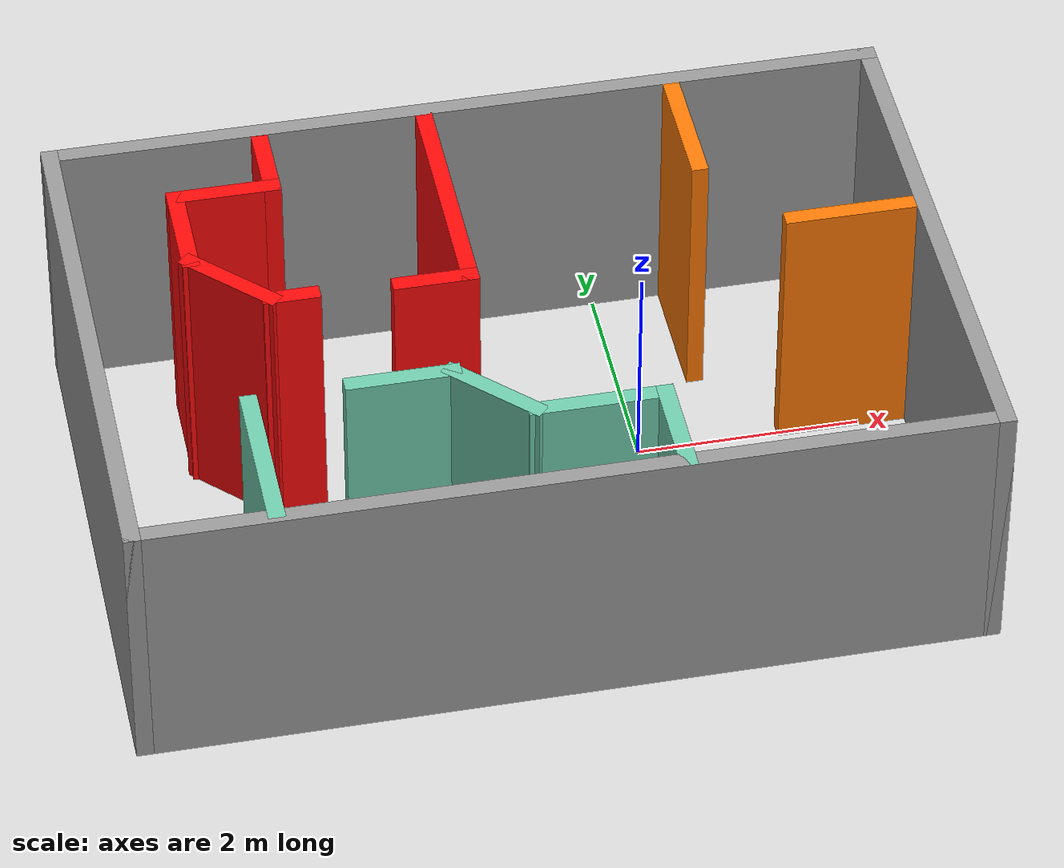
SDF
<?xml version='1.0'?>
<sdf version='1.6'>
  <model name='floorplan_small'>
    <pose frame=''>-1.1795 -0.3396 0 0 -0 0</pose>
    <link name='Wall_10'>
      <collision name='Wall_10_Collision'>
        <geometry>
          <box>
            <size>5 0.15 2.5</size>
          </box>
        </geometry>
        <pose frame=''>0 0 1.25 0 -0 0</pose>
      </collision>
      <visual name='Wall_10_Visual'>
        <pose frame=''>0 0 1.25 0 -0 0</pose>
        <geometry>
          <box>
            <size>5 0.15 2.5</size>
          </box>
        </geometry>
        <material>
          <script>
            <uri>file://media/materials/scripts/gazebo.material</uri>
            <name>Gazebo/Grey</name>
          </script>
          <ambient>0 0 0 1</ambient>
        </material>
        <meta>
          <layer>0</layer>
        </meta>
      </visual>
      <pose frame=''>3.675 0 0 0 -0 1.5708</pose>
    </link>
    <link name='Wall_12'>
      <collision name='Wall_12_Collision'>
        <geometry>
          <box>
            <size>1 0.15 2.5</size>
          </box>
        </geometry>
        <pose frame=''>0 0 1.25 0 -0 0</pose>
      </collision>
      <visual name='Wall_12_Visual'>
        <pose frame=''>0 0 1.25 0 -0 0</pose>
        <geometry>
          <box>
            <size>1 0.15 2.5</size>
          </box>
        </geometry>
        <material>
          <script>
            <uri>file://media/materials/scripts/gazebo.material</uri>
            <name>Gazebo/Grey</name>
          </script>
          <ambient>1 0.0392157 0.0392157 1</ambient>
        </material>
        <meta>
          <layer>0</layer>
        </meta>
      </visual>
      <pose frame=''>-2.68312 1.24618 0 0 0 -1.5708</pose>
    </link>
    <link name='Wall_13'>
      <collision name='Wall_13_Collision'>
        <geometry>
          <box>
            <size>1 0.15 2.5</size>
          </box>
        </geometry>
        <pose frame=''>0 0 1.25 0 -0 0</pose>
      </collision>
      <visual name='Wall_13_Visual'>
        <pose frame=''>0 0 1.25 0 -0 0</pose>
        <geometry>
          <box>
            <size>1 0.15 2.5</size>
          </box>
        </geometry>
        <material>
          <script>
            <uri>file://media/materials/scripts/gazebo.material</uri>
            <name>Gazebo/Grey</name>
          </script>
          <ambient>1 0.0392157 0.0392157 1</ambient>
        </material>
        <meta>
          <layer>0</layer>
        </meta>
      </visual>
      <pose frame=''>-2.3826 0.520655 0 0 0 -0.785398</pose>
    </link>
    <link name='Wall_15'>
      <collision name='Wall_15_Collision'>
        <geometry>
          <box>
            <size>0.5 0.15 2.5</size>
          </box>
        </geometry>
        <pose frame=''>0 0 1.25 0 -0 0</pose>
      </collision>
      <visual name='Wall_15_Visual'>
        <pose frame=''>0 0 1.25 0 -0 0</pose>
        <geometry>
          <box>
            <size>0.5 0.15 2.5</size>
          </box>
        </geometry>
        <material>
          <script>
            <uri>file://media/materials/scripts/gazebo.material</uri>
            <name>Gazebo/Grey</name>
          </script>
          <ambient>1 0.0392157 0.0392157 1</ambient>
        </material>
        <meta>
          <layer>0</layer>
        </meta>
      </visual>
      <pose frame=''>-1.90708 0.220134 0 0 -0 0</pose>
    </link>
    <link name='Wall_17'>
      <collision name='Wall_17_Collision'>
        <geometry>
          <box>
            <size>1 0.15 2.5</size>
          </box>
        </geometry>
        <pose frame=''>0 0 1.25 0 -0 0</pose>
      </collision>
      <visual name='Wall_17_Visual'>
        <pose frame=''>0 0 1.25 0 -0 0</pose>
        <geometry>
          <box>
            <size>1 0.15 2.5</size>
          </box>
        </geometry>
        <material>
          <script>
            <uri>file://media/materials/scripts/gazebo.material</uri>
            <name>Gazebo/Grey</name>
          </script>
          <ambient>1 0.0392157 0.0392157 1</ambient>
        </material>
        <meta>
          <layer>0</layer>
        </meta>
      </visual>
      <pose frame=''>-2.25813 1.67118 0 0 -0 0</pose>
    </link>
    <link name='Wall_19'>
      <collision name='Wall_19_Collision'>
        <geometry>
          <box>
            <size>0.75 0.15 2.5</size>
          </box>
        </geometry>
        <pose frame=''>0 0 1.25 0 -0 0</pose>
      </collision>
      <visual name='Wall_19_Visual'>
        <pose frame=''>0 0 1.25 0 -0 0</pose>
        <geometry>
          <box>
            <size>0.75 0.15 2.5</size>
          </box>
        </geometry>
        <material>
          <script>
            <uri>file://media/materials/scripts/gazebo.material</uri>
            <name>Gazebo/Grey</name>
          </script>
          <ambient>1 0.0392157 0.0392157 1</ambient>
        </material>
        <meta>
          <layer>0</layer>
        </meta>
      </visual>
      <pose frame=''>-1.83312 1.97117 0 0 -0 1.5708</pose>
    </link>
    <link name='Wall_22'>
      <collision name='Wall_22_Collision'>
        <geometry>
          <box>
            <size>0.75 0.15 2.5</size>
          </box>
        </geometry>
        <pose frame=''>0 0 1.25 0 -0 0</pose>
      </collision>
      <visual name='Wall_22_Visual'>
        <pose frame=''>0 0 1.25 0 -0 0</pose>
        <geometry>
          <box>
            <size>0.75 0.15 2.5</size>
          </box>
        </geometry>
        <material>
          <script>
            <uri>file://media/materials/scripts/gazebo.material</uri>
            <name>Gazebo/Grey</name>
          </script>
          <ambient>1 0.0392157 0.0392157 1</ambient>
        </material>
        <meta>
          <layer>0</layer>
        </meta>
      </visual>
      <pose frame=''>-0.663875 0.189975 0 0 -0 0</pose>
    </link>
    <link name='Wall_23'>
      <collision name='Wall_23_Collision'>
        <geometry>
          <box>
            <size>2.25 0.15 2.5</size>
          </box>
        </geometry>
        <pose frame=''>0 0 1.25 0 -0 0</pose>
      </collision>
      <visual name='Wall_23_Visual'>
        <pose frame=''>0 0 1.25 0 -0 0</pose>
        <geometry>
          <box>
            <size>2.25 0.15 2.5</size>
          </box>
        </geometry>
        <material>
          <script>
            <uri>file://media/materials/scripts/gazebo.material</uri>
            <name>Gazebo/Grey</name>
          </script>
          <ambient>1 0.0392157 0.0392157 1</ambient>
        </material>
        <meta>
          <layer>0</layer>
        </meta>
      </visual>
      <pose frame=''>-0.363875 1.23998 0 0 -0 1.5708</pose>
    </link>
    <link name='Wall_26'>
      <collision name='Wall_26_Collision'>
        <geometry>
          <box>
            <size>1.5 0.15 2.5</size>
          </box>
        </geometry>
        <pose frame=''>0 0 1.25 0 -0 0</pose>
      </collision>
      <visual name='Wall_26_Visual'>
        <pose frame=''>0 0 1.25 0 -0 0</pose>
        <geometry>
          <box>
            <size>1.5 0.15 2.5</size>
          </box>
        </geometry>
        <material>
          <script>
            <uri>file://media/materials/scripts/gazebo.material</uri>
            <name>Gazebo/Grey</name>
          </script>
          <ambient>0.435294 0.796078 0.67451 1</ambient>
        </material>
        <meta>
          <layer>0</layer>
        </meta>
      </visual>
      <pose frame=''>-2.47153 -1.70172 0 0 0 -1.5708</pose>
    </link>
    <link name='Wall_28'>
      <collision name='Wall_28_Collision'>
        <geometry>
          <box>
            <size>1 0.15 2.5</size>
          </box>
        </geometry>
        <pose frame=''>0 0 1.25 0 -0 0</pose>
      </collision>
      <visual name='Wall_28_Visual'>
        <pose frame=''>0 0 1.25 0 -0 0</pose>
        <geometry>
          <box>
            <size>1 0.15 2.5</size>
          </box>
        </geometry>
        <material>
          <script>
            <uri>file://media/materials/scripts/gazebo.material</uri>
            <name>Gazebo/Grey</name>
          </script>
          <ambient>0.435294 0.796078 0.67451 1</ambient>
        </material>
        <meta>
          <layer>0</layer>
        </meta>
      </visual>
      <pose frame=''>-1.16045 -0.973825 0 0 -0 0</pose>
    </link>
    <link name='Wall_29'>
      <collision name='Wall_29_Collision'>
        <geometry>
          <box>
            <size>1 0.15 2.5</size>
          </box>
        </geometry>
        <pose frame=''>0 0 1.25 0 -0 0</pose>
      </collision>
      <visual name='Wall_29_Visual'>
        <pose frame=''>0 0 1.25 0 -0 0</pose>
        <geometry>
          <box>
            <size>1 0.15 2.5</size>
          </box>
        </geometry>
        <material>
          <script>
            <uri>file://media/materials/scripts/gazebo.material</uri>
            <name>Gazebo/Grey</name>
          </script>
          <ambient>0.435294 0.796078 0.67451 1</ambient>
        </material>
        <meta>
          <layer>0</layer>
        </meta>
      </visual>
      <pose frame=''>-0.43493 -1.27435 0 0 0 -0.785398</pose>
    </link>
    <link name='Wall_30'>
      <collision name='Wall_30_Collision'>
        <geometry>
          <box>
            <size>1.25 0.15 2.5</size>
          </box>
        </geometry>
        <pose frame=''>0 0 1.25 0 -0 0</pose>
      </collision>
      <visual name='Wall_30_Visual'>
        <pose frame=''>0 0 1.25 0 -0 0</pose>
        <geometry>
          <box>
            <size>1.25 0.15 2.5</size>
          </box>
        </geometry>
        <material>
          <script>
            <uri>file://media/materials/scripts/gazebo.material</uri>
            <name>Gazebo/Grey</name>
          </script>
          <ambient>0.435294 0.796078 0.67451 1</ambient>
        </material>
        <meta>
          <layer>0</layer>
        </meta>
      </visual>
      <pose frame=''>0.415591 -1.57487 0 0 -0 0</pose>
    </link>
    <link name='Wall_31'>
      <collision name='Wall_31_Collision'>
        <geometry>
          <box>
            <size>1 0.15 2.5</size>
          </box>
        </geometry>
        <pose frame=''>0 0 1.25 0 -0 0</pose>
      </collision>
      <visual name='Wall_31_Visual'>
        <pose frame=''>0 0 1.25 0 -0 0</pose>
        <geometry>
          <box>
            <size>1 0.15 2.5</size>
          </box>
        </geometry>
        <material>
          <script>
            <uri>file://media/materials/scripts/gazebo.material</uri>
            <name>Gazebo/Grey</name>
          </script>
          <ambient>0.435294 0.796078 0.67451 1</ambient>
        </material>
        <meta>
          <layer>0</layer>
        </meta>
      </visual>
      <pose frame=''>0.965591 -1.99987 0 0 0 -1.5708</pose>
    </link>
    <link name='Wall_35'>
      <collision name='Wall_35_Collision'>
        <geometry>
          <box>
            <size>1.25 0.15 2.5</size>
          </box>
        </geometry>
        <pose frame=''>0 0 1.25 0 -0 0</pose>
      </collision>
      <visual name='Wall_35_Visual'>
        <pose frame=''>0 0 1.25 0 -0 0</pose>
        <geometry>
          <box>
            <size>1.25 0.15 2.5</size>
          </box>
        </geometry>
        <material>
          <script>
            <uri>file://media/materials/scripts/gazebo.material</uri>
            <name>Gazebo/Grey</name>
          </script>
          <ambient>0.996078 0.47451 0.0196078 1</ambient>
        </material>
        <meta>
          <layer>0</layer>
        </meta>
      </visual>
      <pose frame=''>3.0643 0.375125 0 0 -0 0</pose>
    </link>
    <link name='Wall_37'>
      <collision name='Wall_37_Collision'>
        <geometry>
          <box>
            <size>1.25 0.15 2.5</size>
          </box>
        </geometry>
        <pose frame=''>0 0 1.25 0 -0 0</pose>
      </collision>
      <visual name='Wall_37_Visual'>
        <pose frame=''>0 0 1.25 0 -0 0</pose>
        <geometry>
          <box>
            <size>1.25 0.15 2.5</size>
          </box>
        </geometry>
        <material>
          <script>
            <uri>file://media/materials/scripts/gazebo.material</uri>
            <name>Gazebo/Grey</name>
          </script>
          <ambient>0.996078 0.47451 0.0196078 1</ambient>
        </material>
        <meta>
          <layer>0</layer>
        </meta>
      </visual>
      <pose frame=''>1.86627 1.77153 0 0 -0 1.5708</pose>
    </link>
    <link name='Wall_6'>
      <collision name='Wall_6_Collision'>
        <geometry>
          <box>
            <size>7.5 0.15 2.5</size>
          </box>
        </geometry>
        <pose frame=''>0 0 1.25 0 -0 0</pose>
      </collision>
      <visual name='Wall_6_Visual'>
        <pose frame=''>0 0 1.25 0 -0 0</pose>
        <geometry>
          <box>
            <size>7.5 0.15 2.5</size>
          </box>
        </geometry>
        <material>
          <script>
            <uri>file://media/materials/scripts/gazebo.material</uri>
            <name>Gazebo/Grey</name>
          </script>
          <ambient>0 0 0 1</ambient>
        </material>
        <meta>
          <layer>0</layer>
        </meta>
      </visual>
      <pose frame=''>0 2.425 0 0 -0 0</pose>
    </link>
    <link name='Wall_8'>
      <collision name='Wall_8_Collision'>
        <geometry>
          <box>
            <size>5 0.15 2.5</size>
          </box>
        </geometry>
        <pose frame=''>0 0 1.25 0 -0 0</pose>
      </collision>
      <visual name='Wall_8_Visual'>
        <pose frame=''>0 0 1.25 0 -0 0</pose>
        <geometry>
          <box>
            <size>5 0.15 2.5</size>
          </box>
        </geometry>
        <material>
          <script>
            <uri>file://media/materials/scripts/gazebo.material</uri>
            <name>Gazebo/Grey</name>
          </script>
          <ambient>0 0 0 1</ambient>
        </material>
        <meta>
          <layer>0</layer>
        </meta>
      </visual>
      <pose frame=''>-3.675 0 0 0 0 -1.5708</pose>
    </link>
    <link name='Wall_9'>
      <collision name='Wall_9_Collision'>
        <geometry>
          <box>
            <size>7.5 0.15 2.5</size>
          </box>
        </geometry>
        <pose frame=''>0 0 1.25 0 -0 0</pose>
      </collision>
      <visual name='Wall_9_Visual'>
        <pose frame=''>0 0 1.25 0 -0 0</pose>
        <geometry>
          <box>
            <size>7.5 0.15 2.5</size>
          </box>
        </geometry>
        <material>
          <script>
            <uri>file://media/materials/scripts/gazebo.material</uri>
            <name>Gazebo/Grey</name>
          </script>
          <ambient>0 0 0 1</ambient>
        </material>
        <meta>
          <layer>0</layer>
        </meta>
      </visual>
      <pose frame=''>0 -2.425 0 0 -0 0</pose>
    </link>
    <static>1</static>
  </model>
</sdf>
